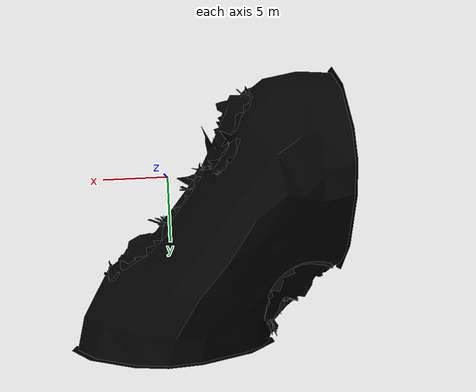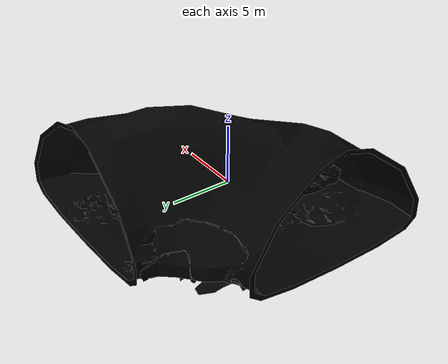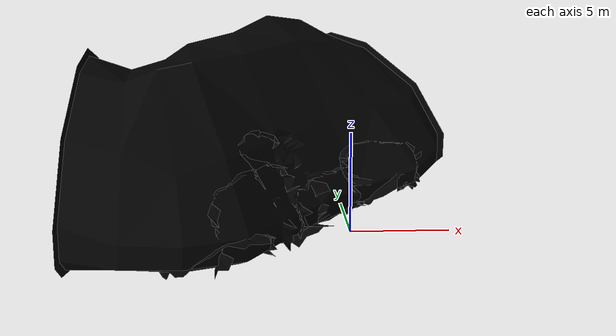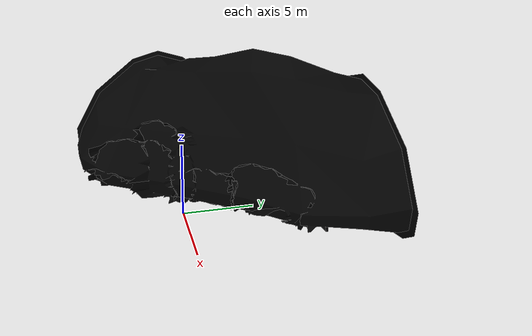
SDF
<sdf version="1.6">
  <model name="Cave Corner 02 Lights Type B">
    <include>
      <name>cave_corner_02</name>
      <uri>model://Cave Corner 02 Type B</uri>
    </include>
    <static>true</static>
    <link name="lights">
      <light name="spot_light1" type="spot">
        <pose>-2 6.0 3.5 0 0 0</pose>
        <diffuse>0 0 0 1</diffuse>
        <specular>0 0 0 1</specular>
        <attenuation>
          <range>20</range>
          <linear>0.2</linear>
          <constant>0.5</constant>
          <quadratic>0.02</quadratic>
        </attenuation>
        <spot>
          <inner_angle>2.0</inner_angle>
          <outer_angle>3.1</outer_angle>
          <falloff>1.0</falloff>
        </spot>
        <cast_shadows>false</cast_shadows>
      </light>

      <light name="spot_light2" type="spot">
        <pose>-6.5 -.25 4.5 0 0 0</pose>
        <diffuse>0 0 0 1</diffuse>
        <specular>0 0 0 1</specular>
        <attenuation>
          <range>20</range>
          <linear>0.2</linear>
          <constant>0.5</constant>
          <quadratic>0.02</quadratic>
        </attenuation>
        <spot>
          <inner_angle>2.0</inner_angle>
          <outer_angle>3.1</outer_angle>
          <falloff>1.0</falloff>
        </spot>
        <cast_shadows>false</cast_shadows>
      </light>
    </link>
  </model>
</sdf>

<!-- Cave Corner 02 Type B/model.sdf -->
<sdf version="1.6">
  <model name="Cave Corner 02 Type B">
    <static>true</static>
    <link name="base_link">
      <collision name="collision">
        <pose>0 0 0 0 0 0</pose>
        <geometry>
          <mesh>
            <uri>model://cave_corner_02/meshes/cavecorner02.dae</uri>
            <scale>1.005 1.005 1.0</scale>
          </mesh>
        </geometry>
      </collision>
      <visual name="CaveWall_visual">
        <geometry>
          <mesh>
            <uri>model://cave_corner_02/meshes/cavecorner02.dae</uri>
            <submesh>
              <name>CaveWall</name>
              <center>false</center>
            </submesh>
            <scale>1.005 1.005 1.0</scale>
          </mesh>
        </geometry>
        <material>
          <diffuse>0 0 0 1</diffuse>
          <specular>0 0 0 1</specular>
          <pbr>
            <metal>
              <albedo_map>model://cave_corner_02/materials/textures/CaveWall_Albedo.png</albedo_map>
              <normal_map>model://cave_corner_02/materials/textures/CaveWall_Normal.png</normal_map>
              <roughness_map>model://cave_corner_02/materials/textures/CaveWall_Roughness.png</roughness_map>
            </metal>
          </pbr>

          <script>
            <uri>model://cave_corner_02/materials/scripts/</uri>
            <uri>model://cave_corner_02/materials/textures/</uri>
            <name>CaveTile/CaveWall_Diffuse</name>
          </script>
        </material>
      </visual>
      <visual name="StriatedRock_visual">
        <geometry>
          <mesh>
            <uri>model://cave_corner_02/meshes/cavecorner02.dae</uri>
            <submesh>
              <name>StriatedRock</name>
              <center>false</center>
            </submesh>
            <scale>1.005 1.005 1.0</scale>
          </mesh>
        </geometry>
        <material>
          <diffuse>0 0 0 1</diffuse>
          <specular>0 0 0 1</specular>
          <pbr>
            <metal>
              <albedo_map>model://cave_corner_02/materials/textures/StriatedRock_Albedo.png</albedo_map>
              <normal_map>model://cave_corner_02/materials/textures/StriatedRock_Normal.png</normal_map>
              <roughness_map>model://cave_corner_02/materials/textures/StriatedRock_Roughness.png</roughness_map>
            </metal>
          </pbr>

          <script>
            <uri>model://cave_corner_02/materials/scripts/</uri>
            <uri>model://cave_corner_02/materials/textures/</uri>
            <name>CaveTile/StriatedRock_Diffuse</name>
          </script>
        </material>
      </visual>
      <visual name="RockPile_visual">
        <geometry>
          <mesh>
            <uri>model://cave_corner_02/meshes/cavecorner02.dae</uri>
            <submesh>
              <name>RockPile</name>
              <center>false</center>
            </submesh>
            <scale>1.005 1.005 1.0</scale>
          </mesh>
        </geometry>
        <material>
          <diffuse>0 0 0 1</diffuse>
          <specular>0 0 0 1</specular>
          <pbr>
            <metal>
              <albedo_map>model://cave_corner_02/materials/textures/RockPile_Albedo.png</albedo_map>
              <normal_map>model://cave_corner_02/materials/textures/RockPile_Normal.png</normal_map>
              <roughness_map>model://cave_corner_02/materials/textures/RockPile_Roughness.png</roughness_map>
            </metal>
          </pbr>

          <script>
            <uri>model://cave_corner_02/materials/scripts/</uri>
            <uri>model://cave_corner_02/materials/textures/</uri>
            <name>CaveTile/RockPile_Diffuse</name>
          </script>
        </material>
      </visual>
    </link>
  </model>
</sdf>
